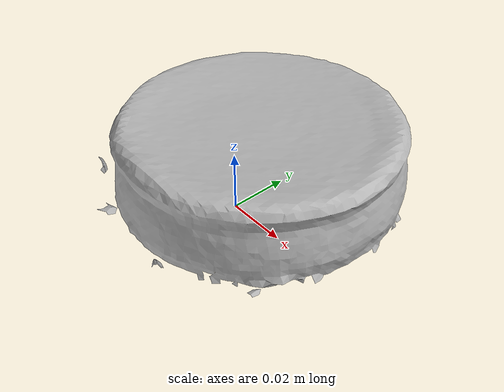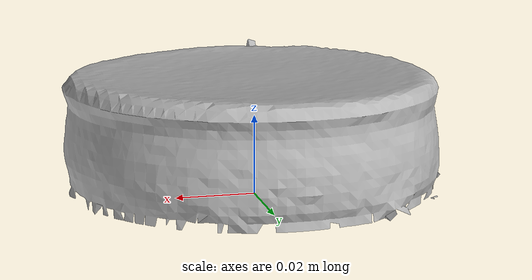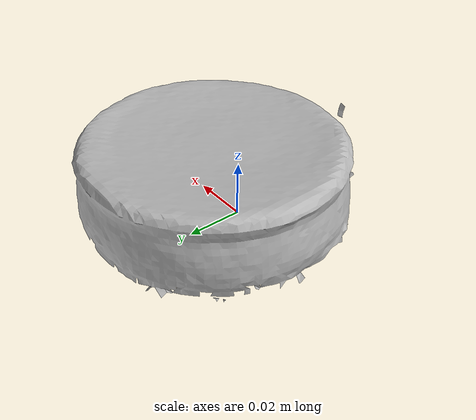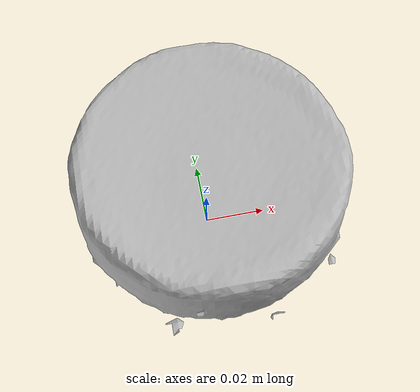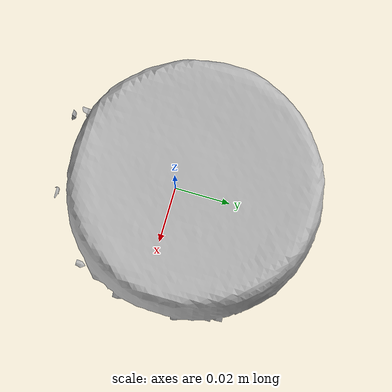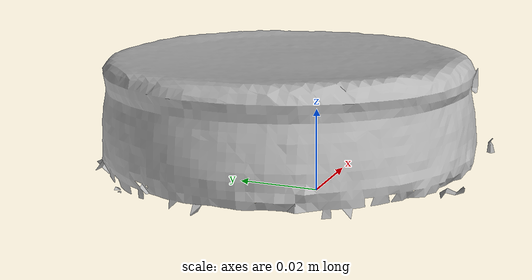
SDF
<?xml version='1.0'?>
<sdf version="1.4">
  <model name="bumblebee_albacore">
    <static>false</static>
    <link name="link">
      <inertial>
        <pose>0.0025819233253942643 0.006937679149656223 0.01923512207576322 3.132465045612473 -1.5669700892457146 1.5119809552846213</pose>
        <mass>0.01734206582504033</mass>
        <inertia>
          <ixx>1.772503946620899e-05</ixx>
          <ixy>1.4022795433935925e-23</ixy>
          <ixz>4.008845147506279e-23</ixz>
          <iyy>1.0211030957911091e-05</iyy>
          <iyz>2.948639618611886e-22</iyz>
          <izz>9.578553199780842e-06</izz>
        </inertia>
      </inertial>
      <collision name="collision">
        <geometry>
          <mesh>
            <!-- Use a downsampled mesh for collisions -->
            <uri>model:///bumblebee_albacore/bumblebee_albacore_250_collision.obj</uri>
	        </mesh>
        </geometry>
        <surface>
      </surface>
      </collision>
      <visual name="visual">
        <geometry>
          <mesh>
            <uri>model:///bumblebee_albacore/optimized_tsdf_texture_mapped_mesh.obj</uri>
	        </mesh>
        </geometry>
        <material>
          <script>
            <uri>model:///bumblebee_albacore/bumblebee_albacore.material</uri>
            <name>bumblebee_albacore</name>
          </script>
        </material>
      </visual>
    </link>
  </model>
</sdf>
